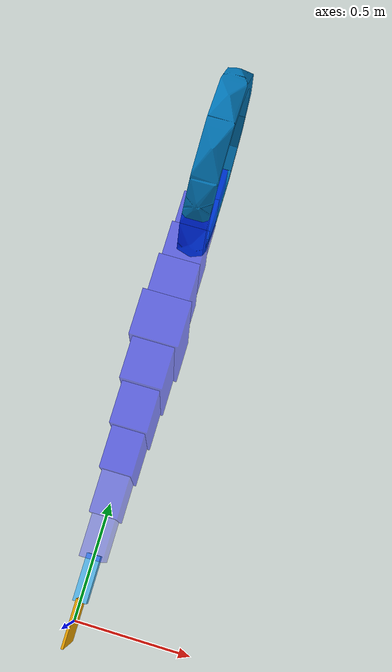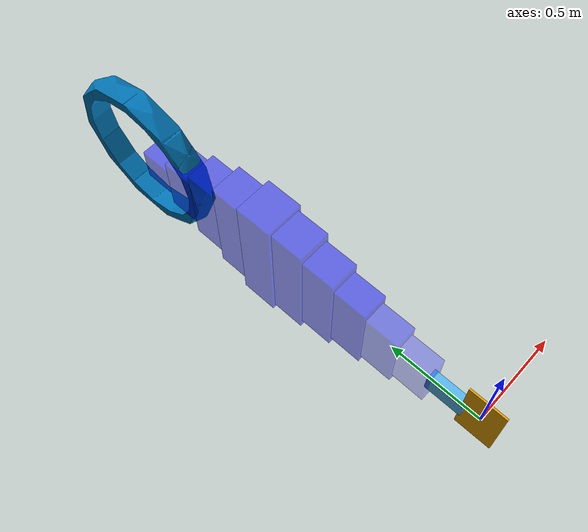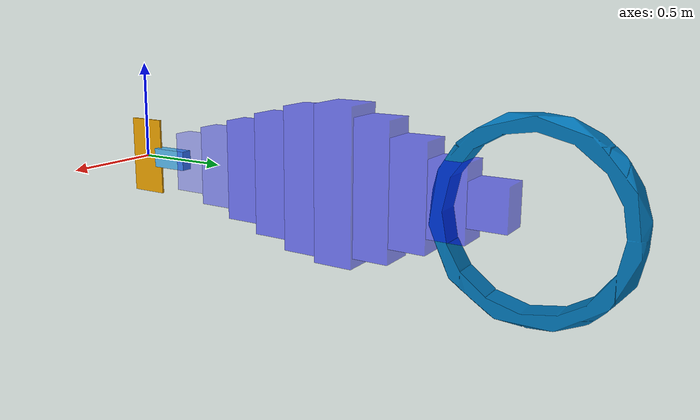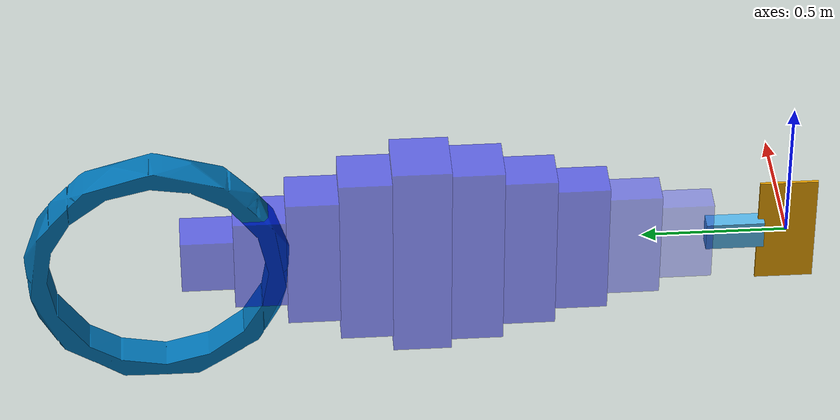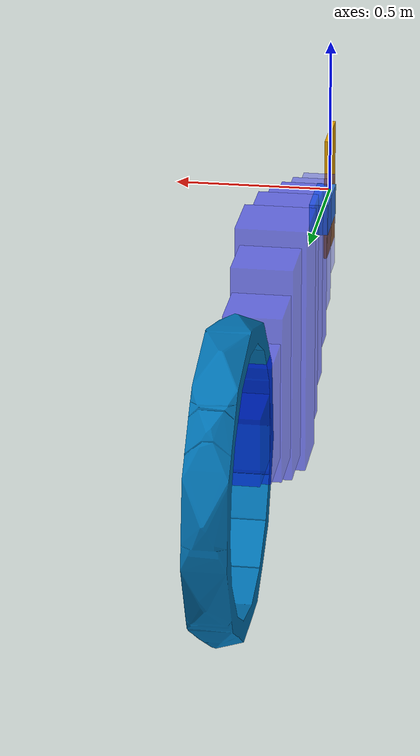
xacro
<robot name="my_robot">

  <!-- the model -->
  <link name="tail">
    <inertial>
      <mass value="0.01" />
      <origin xyz="0 0 0." />
      <inertia ixx="50.0" ixy="0.0" ixz="0.0"
        iyy="50.0" iyz="0.0"
        izz="50.0" />
    </inertial>
    <visual>
      <origin rpy="0 0 0" xyz="0 0 0."/>
      <geometry>
        <box size="0.01 0.2 0.4" />
      </geometry>
    </visual>
    <collision>
      <origin rpy="0 0 0" xyz="0 0 0"/>
      <geometry>
        <box size="0.01 0.2 0.4" />
      </geometry>
    </collision>
  </link>

  <joint name="joint0" type="revolute">
    <axis xyz="0 0 1"/>
    <limit effort="1000.0" lower="-.5" upper=".5" velocity="0.5"/>
    <origin rpy="0 0 0" xyz="0 0.08 0"/>
    <parent link="tail"/>
    <child link="link0"/>
  </joint>

  <link name="link0">
    <inertial>
      <mass value="0.01" />
      <origin xyz="0 0 0." />
      <inertia ixx="50.0" ixy="0.0" ixz="0.0"
        iyy="50.0" iyz="0.0"
        izz="50.0" />
    </inertial>
    <visual>
      <origin rpy="0 0 0" xyz="0 0.1 0"/>
      <geometry>
        <box size="0.06 0.2 0.1" />
      </geometry>
    </visual>
    <collision>
      <origin rpy="0 0 0" xyz="0 0.1 0"/>
      <geometry>
        <box size="0.06 0.2 0.1" />
      </geometry>
    </collision>
  </link>

  <joint name="joint1" type="revolute">
    <axis xyz="0 0 1"/>
    <limit effort="1000.0" lower="-.5" upper=".5" velocity="0.5"/>
    <origin rpy="0 0 0" xyz="0 0.18 0"/>
    <parent link="link0"/>
    <child link="link1"/>
  </joint>

  <link name="link1">
    <inertial>
        <origin rpy="0 0 0" xyz="0 0.1 0"/>
        <mass value="0.1"/>
        <inertia ixx="1.67E-03" ixy="0" ixz="0" iyy="0.02166" iyz="0" izz="0.02166"/>
    </inertial>
    <visual>
        <origin rpy="0 0 0" xyz="0 0.1 0"/>
        <geometry>
          <box size="0.1 0.2 0.3" />
        </geometry>
        <material name="">
            <color rgba="0 0 1 0.3"/>
        </material>
    </visual>
    <collision>
        <origin rpy="0 0 0" xyz="0 0.1 0"/>
        <geometry>
            <box size=".1 0.2 0.3" />
        </geometry>
    </collision>
  </link>

  <joint name="joint2" type="revolute">
    <axis xyz="0 0 1"/>
    <limit effort="1000.0" lower="-.5" upper=".5" velocity="0.5"/>
    <origin rpy="0 0 0" xyz="0 0.18 0"/>
    <parent link="link1"/>
    <child link="link2"/>
  </joint>

  <link name="link2">
    <inertial>
        <origin rpy="0 0 0" xyz="0 0.1 0"/>
        <mass value="0.1"/>
        <inertia ixx="1.67E-03" ixy="0" ixz="0" iyy="0.02166" iyz="0" izz="0.02166"/>
    </inertial>
    <visual>
        <origin rpy="0 0 0" xyz="0 0.1 0"/>
        <geometry>
          <box size="0.12 0.2 0.4" />
        </geometry>
        <material name="">
            <color rgba="0 0 1 0.4"/>
        </material>
    </visual>
    <collision>
        <origin rpy="0 0 0" xyz="0 0.1 0"/>
        <geometry>
            <box size="0.12 0.2 0.4" />
        </geometry>
    </collision>
  </link>

  <joint name="joint3" type="revolute">
    <axis xyz="0 0 1"/>
    <limit effort="1000.0" lower="-.5" upper=".5" velocity="0.5"/>
    <origin rpy="0 0 0" xyz="0 0.18 0"/>
    <parent link="link2"/>
    <child link="link3"/>
  </joint>

  <link name="link3">
    <inertial>
        <origin rpy="0 0 0" xyz="0 0.1 0"/>
        <mass value="0.1"/>
        <inertia ixx="1.67E-03" ixy="0" ixz="0" iyy="0.02166" iyz="0" izz="0.02166"/>
    </inertial>
    <visual>
        <origin rpy="0 0 0" xyz="0 0.1 0"/>
        <geometry>
          <box size="0.14 0.2 0.5" />
        </geometry>
        <material name="">
            <color rgba="0 0 1 0.5"/>
        </material>
    </visual>
    <collision>
        <origin rpy="0 0 0" xyz="0 0.1 0"/>
        <geometry>
            <box size="0.14 0.2 0.5" />
        </geometry>
    </collision>
  </link>

  <joint name="joint4" type="revolute">
    <axis xyz="0 0 1"/>
    <limit effort="1000.0" lower="-.5" upper=".5" velocity="0.5"/>
    <origin rpy="0 0 0" xyz="0 0.18 0"/>
    <parent link="link3"/>
    <child link="link4"/>
  </joint>

  <link name="link4">
    <inertial>
        <origin rpy="0 0 0" xyz="0 0.1 0"/>
        <mass value="0.1"/>
        <inertia ixx="1.67E-03" ixy="0" ixz="0" iyy="0.02166" iyz="0" izz="0.02166"/>
    </inertial>
    <visual>
        <origin rpy="0 0 0" xyz="0 0.1 0"/>
        <geometry>
          <box size="0.16 0.2 0.6" />
        </geometry>
        <material name="">
            <color rgba="0 0 1 0.5"/>
        </material>
    </visual>
    <collision>
        <origin rpy="0 0 0" xyz="0 0.1 0"/>
        <geometry>
            <box size="0.16 0.2 0.6" />
        </geometry>
    </collision>
  </link>

  <joint name="joint5" type="revolute">
    <axis xyz="0 0 1"/>
    <limit effort="1000.0" lower="-.5" upper=".5" velocity="0.5"/>
    <origin rpy="0 0 0" xyz="0 0.18 0"/>
    <parent link="link4"/>
    <child link="link5"/>
  </joint>

  <link name="link5">
    <inertial>
        <origin rpy="0 0 0" xyz="0 0.1 0"/>
        <mass value="0.1"/>
        <inertia ixx="1.67E-03" ixy="0" ixz="0" iyy="0.02166" iyz="0" izz="0.02166"/>
    </inertial>
    <visual>
        <origin rpy="0 0 0" xyz="0 0.1 0"/>
        <geometry>
          <box size="0.18 0.2 0.7" />
        </geometry>
        <material name="">
            <color rgba="0 0 1 0.5"/>
        </material>
    </visual>
    <collision>
        <origin rpy="0 0 0" xyz="0 0.1 0"/>
        <geometry>
            <box size="0.18 0.2 0.7" />
        </geometry>
    </collision>
  </link>

  <joint name="joint6" type="revolute">
    <axis xyz="0 0 1"/>
    <limit effort="1000.0" lower="-.5" upper=".5" velocity="0.5"/>
    <origin rpy="0 0 0" xyz="0 0.18 0"/>
    <parent link="link5"/>
    <child link="link6"/>
  </joint>

  <link name="link6">
    <inertial>
        <origin rpy="0 0 0" xyz="0 0.1 0"/>
        <mass value="0.1"/>
        <inertia ixx="1.67E-03" ixy="0" ixz="0" iyy="0.02166" iyz="0" izz="0.02166"/>
    </inertial>
    <visual>
        <origin rpy="0 0 0" xyz="0 0.1 0"/>
        <geometry>
          <box size="0.21 0.2 0.75" />
        </geometry>
        <material name="">
            <color rgba="0 0 1 0.5"/>
        </material>
    </visual>
    <collision>
        <origin rpy="0 0 0" xyz="0 0.1 0"/>
        <geometry>
            <box size="0.21 0.2 0.75" />
        </geometry>
    </collision>
  </link>

  <joint name="joint7" type="revolute">
    <axis xyz="0 0 1"/>
    <limit effort="1000.0" lower="-.5" upper=".5" velocity="0.5"/>
    <origin rpy="0 0 0" xyz="0 0.18 0"/>
    <parent link="link6"/>
    <child link="link7"/>
  </joint>

  <link name="link7">
    <inertial>
        <origin rpy="0 0 0" xyz="0 0.1 0"/>
        <mass value="0.1"/>
        <inertia ixx="1.67E-03" ixy="0" ixz="0" iyy="0.02166" iyz="0" izz="0.02166"/>
    </inertial>
    <visual>
        <origin rpy="0 0 0" xyz="0 0.1 0"/>
        <geometry>
          <box size="0.18 0.2 0.65" />
        </geometry>
        <material name="">
            <color rgba="0 0 1 0.5"/>
        </material>
    </visual>
    <collision>
        <origin rpy="0 0 0" xyz="0 0.1 0"/>
        <geometry>
            <box size="0.18 0.2 0.65" />
        </geometry>
    </collision>
  </link>

  <joint name="joint8" type="revolute">
    <axis xyz="0 0 1"/>
    <limit effort="1000.0" lower="-.5" upper=".5" velocity="0.5"/>
    <origin rpy="0 0 0" xyz="0 0.18 0"/>
    <parent link="link7"/>
    <child link="link8"/>
  </joint>

  <link name="link8">
    <inertial>
        <origin rpy="0 0 0" xyz="0 0.1 0"/>
        <mass value="0.1"/>
        <inertia ixx="1.67E-03" ixy="0" ixz="0" iyy="0.02166" iyz="0" izz="0.02166"/>
    </inertial>
    <visual>
        <origin rpy="0 0 0" xyz="0 0.1 0"/>
        <geometry>
          <box size="0.17 0.2 0.5" />
        </geometry>
        <material name="">
            <color rgba="0 0 1 0.5"/>
        </material>
    </visual>
    <collision>
        <origin rpy="0 0 0" xyz="0 0.1 0"/>
        <geometry>
            <box size="0.17 0.2 0.5" />
        </geometry>
    </collision>
  </link>

  <joint name="joint9" type="revolute">
    <axis xyz="0 0 1"/>
    <limit effort="1000.0" lower="-.5" upper=".5" velocity="0.5"/>
    <origin rpy="0 0 0" xyz="0 0.18 0"/>
    <parent link="link8"/>
    <child link="link9"/>
  </joint>

  <link name="link9">
    <inertial>
        <origin rpy="0 0 0" xyz="0 0.1 0"/>
        <mass value="0.1"/>
        <inertia ixx="1.67E-03" ixy="0" ixz="0" iyy="0.02166" iyz="0" izz="0.02166"/>
    </inertial>
    <visual>
        <origin rpy="0 0 0" xyz="0 0.1 0"/>
        <geometry>
          <box size="0.16 0.2 0.35" />
        </geometry>
        <material name="">
            <color rgba="0 0 1 0.5"/>
        </material>
    </visual>
    <collision>
        <origin rpy="0 0 0" xyz="0 0.1 0"/>
        <geometry>
            <box size="0.16 0.2 0.35" />
        </geometry>
    </collision>
  </link>

  <joint name="joint10" type="revolute">
    <axis xyz="0 0 1"/>
    <limit effort="1000.0" lower="-.5" upper=".5" velocity="0.5"/>
    <origin rpy="0 0 0" xyz="0 0.18 0"/>
    <parent link="link9"/>
    <child link="link10"/>
  </joint>

  <link name="link10">
    <inertial>
        <origin rpy="0 0 0" xyz="0 0.1 0"/>
        <mass value="0.5"/>
        <inertia ixx="1.67E-03" ixy="0" ixz="0" iyy="0.02166" iyz="0" izz="0.02166"/>
    </inertial>
    <visual>
        <origin rpy="0 0 0" xyz="0 0.1 0"/>
        <geometry>
          <box size="0.15 0.2 0.2" />
        </geometry>
        <material name="">
            <color rgba="0 0 1 0.5"/>
        </material>
    </visual>
    <collision>
        <origin rpy="0 0 0" xyz="0 0.1 0"/>
        <geometry>
            <box size="0.15 0.2 0.2" />
        </geometry>
    </collision>
  </link>

  <joint name="joint11" type="revolute">
    <axis xyz="0 0 1"/>
    <limit effort="1000.0" lower="-.5" upper=".5" velocity="0.5"/>
    <origin rpy="0 0 0" xyz="0 0.28 -0.05"/>
    <parent link="link10"/>
    <child link="link11"/>
  </joint>

  <link name="link11">
    <visual>
      <geometry>
        <mesh filename="package://fish/ring2_vhacd.dae" scale=".04 .04 .04"/>
      </geometry>
    </visual>
    <collision>
      <geometry>
        <mesh filename="package://fish/ring2_vhacd.OBJ" scale=".04 .04 .04"/>
      </geometry>
    </collision>
  </link>

  <!-- ROS Control plugin for Gazebo -->
  <gazebo>
    <plugin name="gazebo_ros_control" filename="libgazebo_ros_control.so">
      <robotNamespace>/my_robot</robotNamespace>
      <legacyModeNS>false</legacyModeNS>
    </plugin>
    <plugin name="object_controller" filename="libgazebo_ros_planar_move.so">
      <commandTopic>cmd_vel</commandTopic>
      <odometryTopic>odom</odometryTopic>
      <odometryFrame>odom</odometryFrame>
      <odometryRate>20.0</odometryRate>
      <robotBaseFrame>base_footprint</robotBaseFrame>
    </plugin>
  </gazebo>

  <!-- transmission -->

</robot>
